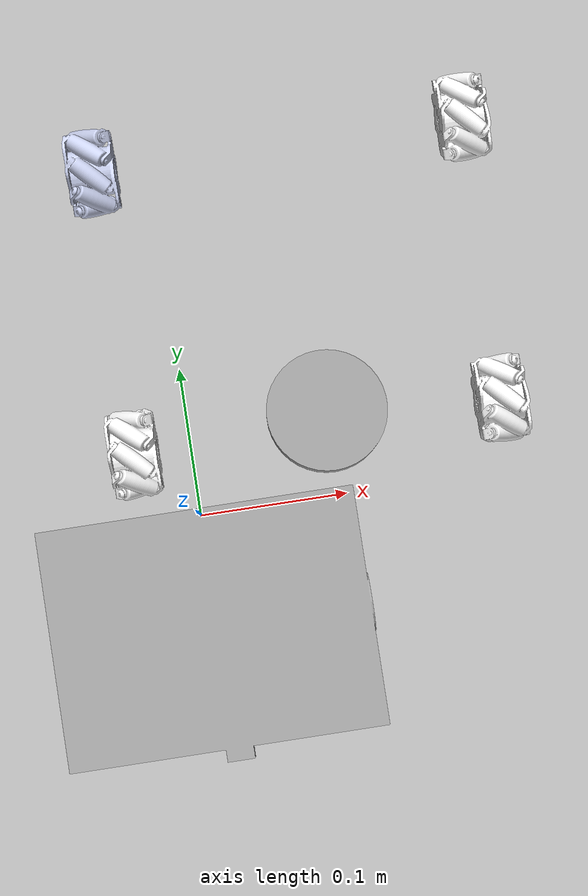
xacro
<?xml version="1.0" encoding="utf-8"?>
<robot xmlns:xacro="http://www.ros.org/wiki/xacro" name="amr">

  <xacro:include filename="laser.gazebo.xacro"/>

  <link name="world"></link>

  <joint name="virtual_joint" type="fixed">
    <parent link="world"/>
    <child link="base_link"/>
    <origin xyz="0.0 0.0 0.0" rpy="-1.57 0 0"/>
  </joint>

  <link
    name="base_link">
    <inertial>
      <origin
        xyz="0.0880454917418126 0.137802168373861 0.102474991306306"
        rpy="0 0 0" />
      <mass
        value="0.988483105484087" />
      <inertia
        ixx="0.00571297289275295"
        ixy="1.6343542369988E-09"
        ixz="-7.31884647297647E-14"
        iyy="0.0024693927684776"
        iyz="7.81445918076223E-05"
        izz="0.0080726172730387" />
    </inertial>
    <visual>
      <origin
        xyz="0 0 0"
        rpy="0 0 0" />
      <geometry>
        <mesh
          filename="package://amr/meshes/base_link.STL" />
      </geometry>
      <material
        name="">
        <color
          rgba="0.627450980392157 0.627450980392157 0.627450980392157 1" />
      </material>
    </visual>
    <collision>
      <origin
        xyz="0 0 0"
        rpy="0 0 0" />
      <geometry>
        <mesh
          filename="package://amr/meshes/base_link.STL" />
      </geometry>
    </collision>
  </link>
  <link
    name="LW_1">
    <inertial>
      <origin
        xyz="1.73313500883218E-05 2.30082235947171E-05 -0.016595198637863"
        rpy="0 0 0" />
      <mass
        value="0.052312226035486" />
      <inertia
        ixx="5.5554980783234E-06"
        ixy="-1.64316630827955E-15"
        ixz="-1.24880438189737E-13"
        iyy="5.55549791070024E-06"
        iyz="4.32526923030284E-14"
        izz="6.55110379568796E-06" />
    </inertial>
    <visual>
      <origin
        xyz="0 0 0"
        rpy="0 0 0" />
      <geometry>
        <mesh
          filename="package://amr/meshes/LW_1.STL" />
      </geometry>
      <material
        name="">
        <color
          rgba="0.792156862745098 0.819607843137255 0.933333333333333 1" />
      </material>
    </visual>
    <collision>
      <origin
        xyz="0 0 0"
        rpy="0 0 0" />
      <geometry>
        <mesh
          filename="package://amr/meshes/LW_1.STL" />
      </geometry>
    </collision>
  </link>
  <joint
    name="LWJ_1"
    type="revolute">
    <origin
      xyz="-0.020189 -0.040268 0.23533"
      rpy="-1.5708 0.27727 -1.5708" />
    <parent
      link="base_link" />
    <child
      link="LW_1" />
    <axis
      xyz="0 0 1" />
    <limit
      lower="0"
      upper="6.28"
      effort="100"
      velocity="10" />
  </joint>
  <link
    name="RW_1">
    <inertial>
      <origin
        xyz="-0.0117547453874102 0.0113422205742806 0.002929409626209"
        rpy="0 0 0" />
      <mass
        value="0.0523122259257065" />
      <inertia
        ixx="6.05330094697864E-06"
        ixy="-4.81943803661672E-07"
        ixz="-1.24651071170121E-07"
        iyy="6.02208794436903E-06"
        iyz="1.20679796440382E-07"
        izz="5.58671086415591E-06" />
    </inertial>
    <visual>
      <origin
        xyz="0 0 0"
        rpy="0 0 0" />
      <geometry>
        <mesh
          filename="package://amr/meshes/RW_1.STL" />
      </geometry>
      <material
        name="">
        <color
          rgba="1 1 1 1" />
      </material>
    </visual>
    <collision>
      <origin
        xyz="0 0 0"
        rpy="0 0 0" />
      <geometry>
        <mesh
          filename="package://amr/meshes/RW_1.STL" />
      </geometry>
    </collision>
  </link>
  <joint
    name="RJW_1"
    type="revolute">
    <origin
      xyz="0.19628 -0.040268 0.23533"
      rpy="-1.1012 0.64351 -2.6549" />
    <parent
      link="base_link" />
    <child
      link="RW_1" />
    <axis
      xyz="0.70711 -0.68458 -0.17706" />
    <limit
      lower="0"
      upper="6.28"
      effort="100"
      velocity="10" />
  </joint>
  <link
    name="LW_2">
    <inertial>
      <origin
        xyz="-0.0117374288507964 -0.00928901019440675 -0.00716578679144122"
        rpy="0 0 0" />
      <mass
        value="0.0523122258667619" />
      <inertia
        ixx="6.05330076242561E-06"
        ixy="3.94889999178446E-07"
        ixz="3.03100012844739E-07"
        iyy="5.86875065570583E-06"
        iyz="2.40438951776932E-07"
        izz="5.74004832899217E-06" />
    </inertial>
    <visual>
      <origin
        xyz="0 0 0"
        rpy="0 0 0" />
      <geometry>
        <mesh
          filename="package://amr/meshes/LW_2.STL" />
      </geometry>
      <material
        name="">
        <color
          rgba="1 1 1 1" />
      </material>
    </visual>
    <collision>
      <origin
        xyz="0 0 0"
        rpy="0 0 0" />
      <geometry>
        <mesh
          filename="package://amr/meshes/LW_2.STL" />
      </geometry>
    </collision>
  </link>
  <joint
    name="LWJ_2"
    type="revolute">
    <origin
      xyz="0.19228 -0.040268 0.045327"
      rpy="-0.65078 0.0038605 2.3562" />
    <parent
      link="base_link" />
    <child
      link="LW_2" />
    <axis
      xyz="0.70711 0.56092 0.43054" />
    <limit
      lower="0"
      upper="6.28"
      effort="100"
      velocity="10" />
  </joint>
  <link
    name="RW_2">
    <inertial>
      <origin
        xyz="-0.011731726116973 -0.0111290775188719 -0.00372983692635658"
        rpy="0 0 0" />
      <mass
        value="0.0523122260392415" />
      <inertia
        ixx="6.05330101473928E-06"
        ixy="4.71614610059513E-07"
        ixz="1.59334198597905E-07"
        iyy="6.00230184457372E-06"
        iyz="1.50952044110783E-07"
        izz="5.60649692667404E-06" />
    </inertial>
    <visual>
      <origin
        xyz="0 0 0"
        rpy="0 0 0" />
      <geometry>
        <mesh
          filename="package://amr/meshes/RW_2.STL" />
      </geometry>
      <material
        name="">
        <color
          rgba="1 1 1 1" />
      </material>
    </visual>
    <collision>
      <origin
        xyz="0 0 0"
        rpy="0 0 0" />
      <geometry>
        <mesh
          filename="package://amr/meshes/RW_2.STL" />
      </geometry>
    </collision>
  </link>
  <joint
    name="RWJ_2"
    type="revolute">
    <origin
      xyz="-0.020189 -0.040268 0.045327"
      rpy="2.4197 0.36821 0.7107" />
    <parent
      link="base_link" />
    <child
      link="RW_2" />
    <axis
      xyz="0.70711 0.66991 0.22633" />
    <limit
      lower="0"
      upper="6.28"
      effort="100"
      velocity="10" />
  </joint>
  <link
    name="Lidar">
    <inertial>
      <origin
        xyz="1.38777878078145E-16 5.55111512312578E-16 0.00999999999999998"
        rpy="0 0 0" />
      <mass
        value="0.07696902001295" />
      <inertia
        ixx="2.61373963793976E-05"
        ixy="8.470329472543E-22"
        ixz="-3.92570577789169E-22"
        iyy="2.61373963793976E-05"
        iyz="-7.29723696241856E-23"
        izz="4.71435247579319E-05" />
    </inertial>
    <visual>
      <origin
        xyz="0 0 0"
        rpy="0 0 0" />
      <geometry>
        <mesh
          filename="package://amr/meshes/Lidar.STL" />
      </geometry>
      <material
        name="">
        <color
          rgba="0.627450980392157 0.627450980392157 0.627450980392157 1" />
      </material>
    </visual>
    <collision>
      <origin
        xyz="0 0 0"
        rpy="0 0 0" />
      <geometry>
        <mesh
          filename="package://amr/meshes/Lidar.STL" />
      </geometry>
    </collision>
  </link>
  <joint
    name="Lidar_joint"
    type="revolute">
    <origin
      xyz="0.088045 -0.20927 0.040327"
      rpy="1.5708 -0.60161 0" />
    <parent
      link="base_link" />
    <child
      link="Lidar" />
    <axis
      xyz="0 0 1" />
    <limit
      lower="0"
      upper="6.28"
      effort="100"
      velocity="10" />
  </joint>
  <xacro:laser/>
</robot>
